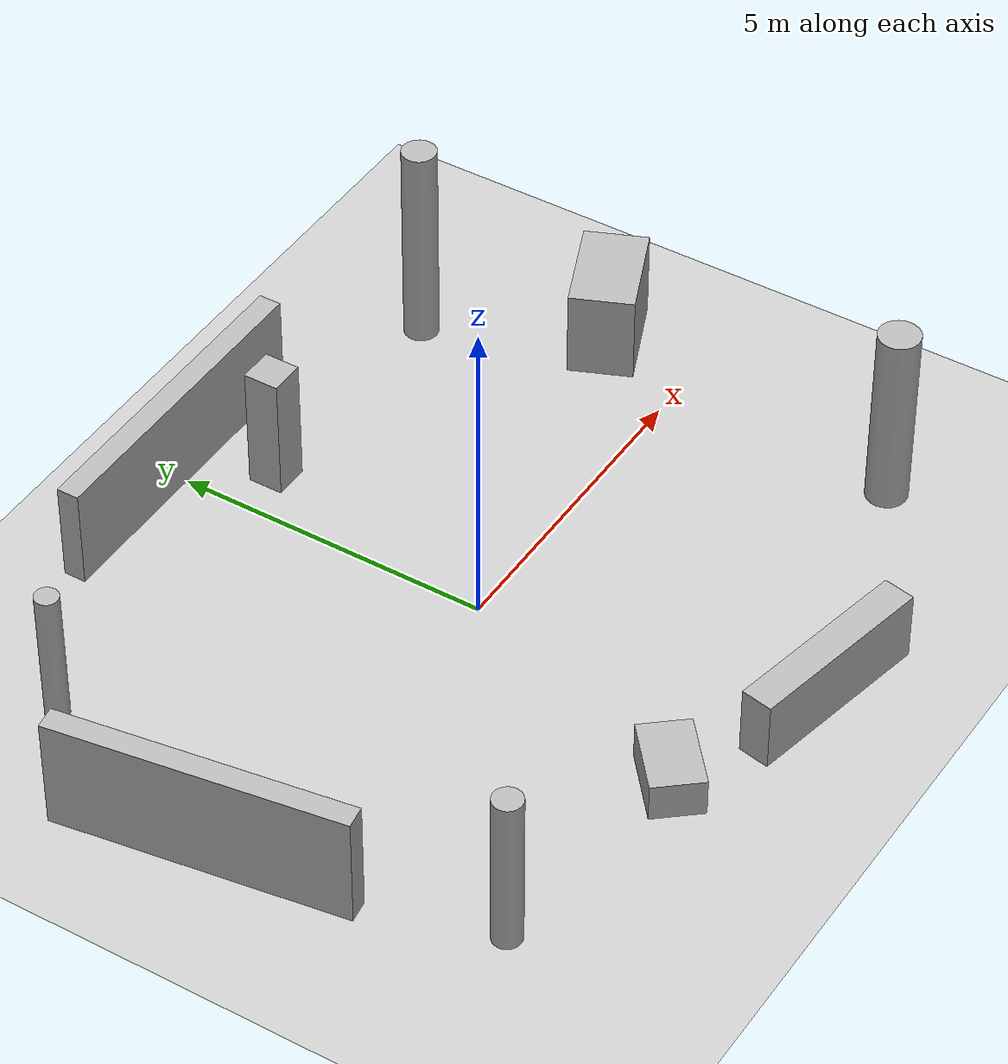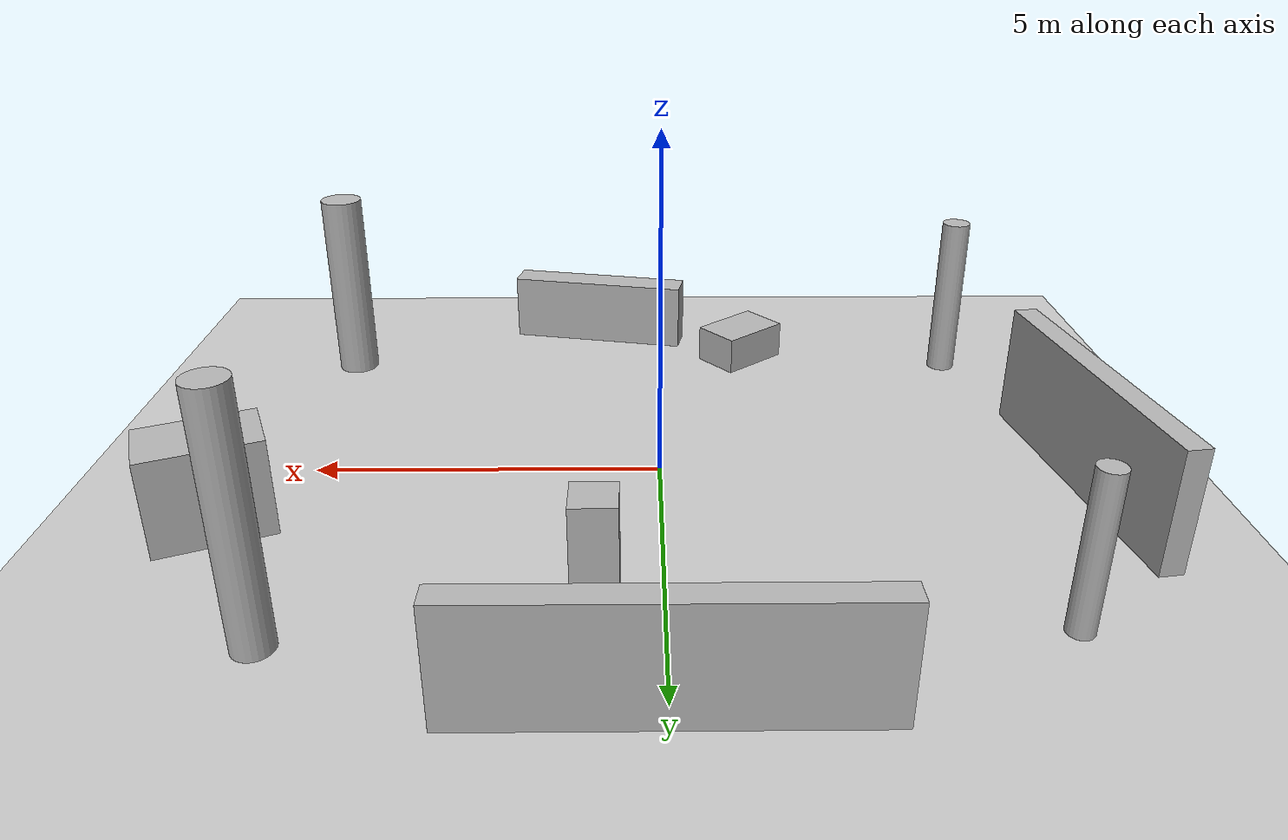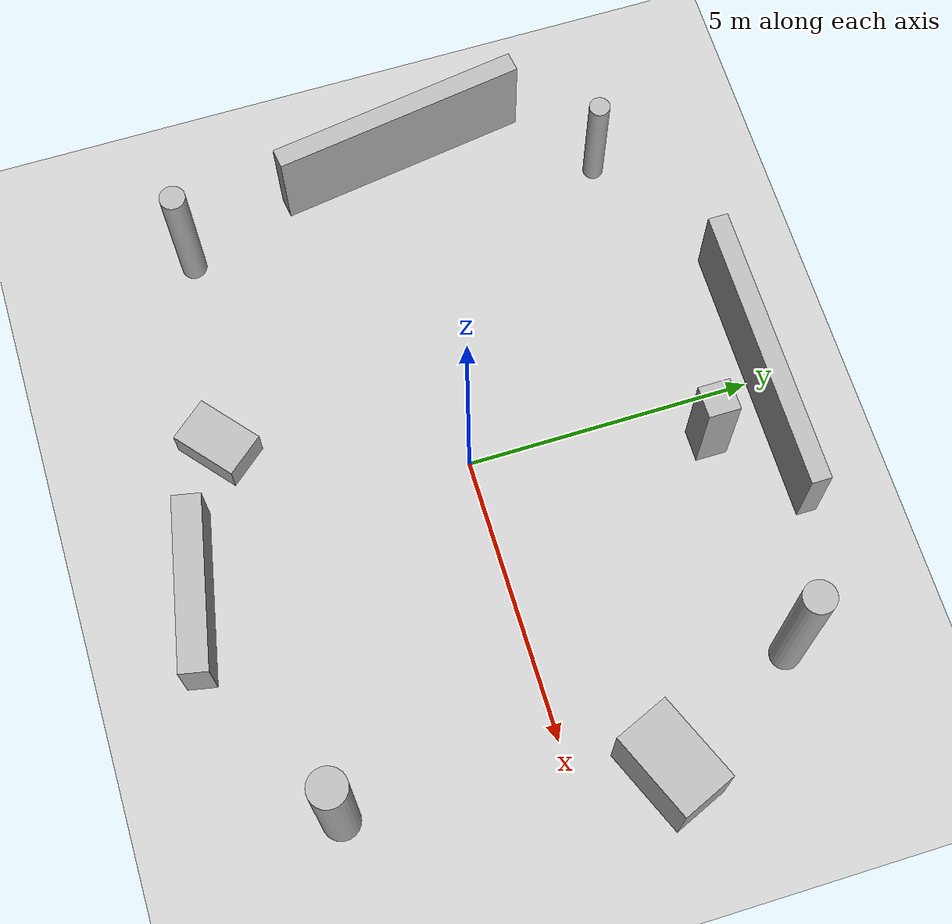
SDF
<?xml version="1.0"?>
<sdf version="1.6">
  <world name="agt_mapping">
    <gravity>0 0 -9.80665</gravity>
    <physics type="ode"><real_time_update_rate>1000</real_time_update_rate><max_step_size>0.001</max_step_size></physics>
    <include><uri>model://ground_plane</uri></include>
    <include><uri>model://sun</uri></include>

    <!-- Asymmetric, tree-like and wall-like geometry for nontrivial LIO/BBS/GICP. -->
    <model name="north_wall"><static>true</static><pose>0 5.2 0.8 0 0 0</pose><link name="link"><collision name="c"><geometry><box><size>5.0 0.35 1.6</size></box></geometry></collision><visual name="v"><geometry><box><size>5.0 0.35 1.6</size></box></geometry></visual></link></model>
    <model name="west_wall"><static>true</static><pose>-6.0 0.5 0.9 0 0 0.15</pose><link name="link"><collision name="c"><geometry><box><size>0.35 4.5 1.8</size></box></geometry></collision><visual name="v"><geometry><box><size>0.35 4.5 1.8</size></box></geometry></visual></link></model>
    <model name="east_box"><static>true</static><pose>6.0 1.5 0.7 0 0 0.4</pose><link name="link"><collision name="c"><geometry><box><size>1.6 1.0 1.4</size></box></geometry></collision><visual name="v"><geometry><box><size>1.6 1.0 1.4</size></box></geometry></visual></link></model>
    <model name="south_bar"><static>true</static><pose>1.0 -5.0 0.55 0 0 -0.2</pose><link name="link"><collision name="c"><geometry><box><size>3.0 0.5 1.1</size></box></geometry></collision><visual name="v"><geometry><box><size>3.0 0.5 1.1</size></box></geometry></visual></link></model>
    <model name="tree_a"><static>true</static><pose>-5.0 -3.6 1.3 0 0 0</pose><link name="link"><collision name="c"><geometry><cylinder><radius>0.22</radius><length>2.6</length></cylinder></geometry></collision><visual name="v"><geometry><cylinder><radius>0.22</radius><length>2.6</length></cylinder></geometry></visual></link></model>
    <model name="tree_b"><static>true</static><pose>5.2 -3.7 1.5 0 0 0</pose><link name="link"><collision name="c"><geometry><cylinder><radius>0.32</radius><length>3.0</length></cylinder></geometry></collision><visual name="v"><geometry><cylinder><radius>0.32</radius><length>3.0</length></cylinder></geometry></visual></link></model>
    <model name="tree_c"><static>true</static><pose>-4.8 3.8 1.1 0 0 0</pose><link name="link"><collision name="c"><geometry><cylinder><radius>0.18</radius><length>2.2</length></cylinder></geometry></collision><visual name="v"><geometry><cylinder><radius>0.18</radius><length>2.2</length></cylinder></geometry></visual></link></model>
    <model name="tree_d"><static>true</static><pose>4.7 4.0 1.7 0 0 0</pose><link name="link"><collision name="c"><geometry><cylinder><radius>0.27</radius><length>3.4</length></cylinder></geometry></collision><visual name="v"><geometry><cylinder><radius>0.27</radius><length>3.4</length></cylinder></geometry></visual></link></model>
    <model name="landmark_column"><static>true</static><pose>0.8 4.0 1.0 0 0 0</pose><link name="link"><collision name="c"><geometry><box><size>0.55 0.55 2.0</size></box></geometry></collision><visual name="v"><geometry><box><size>0.55 0.55 2.0</size></box></geometry></visual></link></model>
    <model name="low_block"><static>true</static><pose>-1.5 -4.0 0.3 0 0 0.7</pose><link name="link"><collision name="c"><geometry><box><size>1.2 0.8 0.6</size></box></geometry></collision><visual name="v"><geometry><box><size>1.2 0.8 0.6</size></box></geometry></visual></link></model>
  </world>
</sdf>
